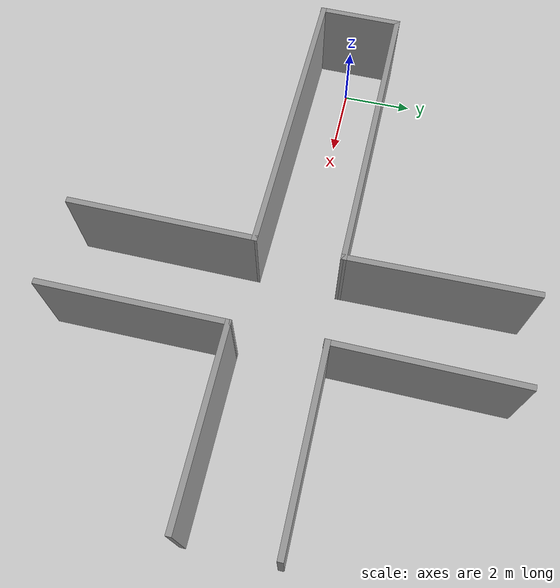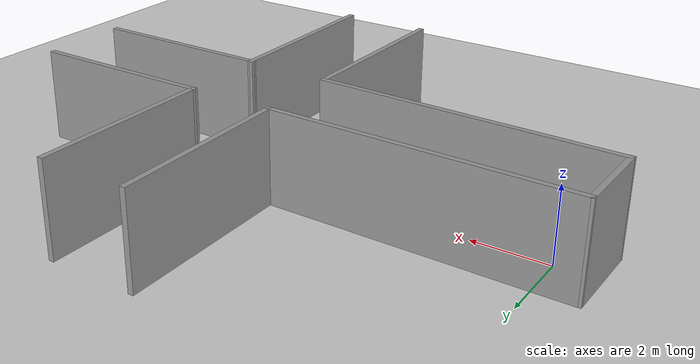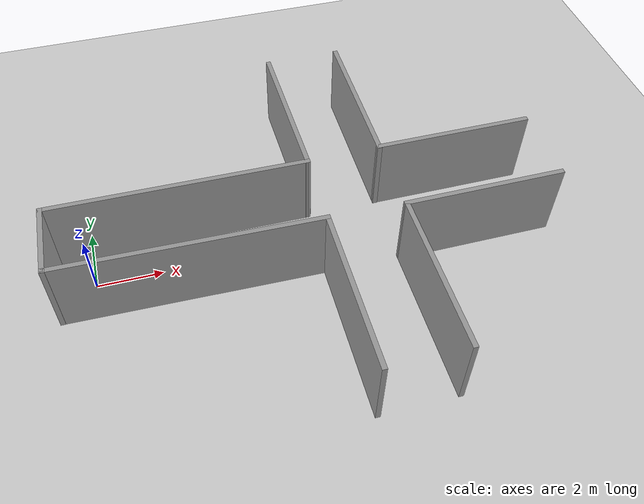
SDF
<sdf version="1.6">
 <world name="default">
  <light name="sun" type="directional">
   <pose>0 0 10 0 -0 0</pose>
   <diffuse>0.8 0.8 0.8 1</diffuse>
   <specular>0.2 0.2 0.2 1</specular>
   <attenuation>
    <range>1000</range>
    <constant>0.9</constant>
    <linear>0.01</linear>
    <quadratic>0.001</quadratic>
   </attenuation>
   <direction>-0.5 0.1 -0.9</direction>
  </light>
  <model name="ground_plane">
   <static>1</static>
   <link name="link">
    <collision name="collision">
     <geometry><plane><normal>0 0 1</normal><size>100 100</size></plane></geometry>
     <surface>
      <contact><collide_bitmask>65535</collide_bitmask></contact>
      <friction><ode><mu>100</mu><mu2>50</mu2></ode></friction>
     </surface>
    </collision>
    <visual name="visual">
     <cast_shadows>0</cast_shadows>
     <geometry><plane><normal>0 0 1</normal><size>100 100</size></plane></geometry>
     <material>
      <script><uri>file://media/materials/scripts/gazebo.material</uri><name>Gazebo/Grey</name></script>
     </material>
    </visual>
   </link>
  </model>
  <gravity>0 0 -9.8</gravity>
  <magnetic_field>6e-06 2.3e-05 -4.2e-05</magnetic_field>
  <atmosphere type="adiabatic"/>
  <physics name="default_physics" default="0" type="ode">
   <max_step_size>0.001</max_step_size>
   <real_time_factor>1</real_time_factor>
   <real_time_update_rate>1000</real_time_update_rate>
  </physics>
  <scene><ambient>0.4 0.4 0.4 1</ambient><background>0.7 0.7 0.7 1</background><shadows>1</shadows></scene>
  <audio><device>default</device></audio>
  <spherical_coordinates>
   <surface_model>EARTH_WGS84</surface_model>
   <latitude_deg>0</latitude_deg>
   <longitude_deg>0</longitude_deg>
   <elevation>0</elevation>
   <heading_deg>0</heading_deg>
  </spherical_coordinates>
  <model name="cross_roads">
   <pose>6.44941 -0.085248 0 0 0 -1.56933</pose>
   <link name="Wall_10">
    <collision name="Wall_10_Collision">
     <geometry><box><size>2.35535 0.15 2.5</size></box></geometry>
     <pose>0 0 1.25 0 -0 0</pose>
    </collision>
    <visual name="Wall_10_Visual">
     <pose>0 0 1.25 0 -0 0</pose>
     <geometry><box><size>2.35535 0.15 2.5</size></box></geometry>
     <material>
      <script><uri>file://media/materials/scripts/gazebo.material</uri><name>Gazebo/Grey</name></script>
      <ambient>1 1 1 1</ambient>
     </material>
     <meta><layer>0</layer></meta>
    </visual>
    <pose>-0.148023 -7.50062 0 0 -0 -0.011415</pose>
   </link>
   <link name="Wall_11">
    <collision name="Wall_11_Collision">
     <geometry><box><size>8 0.15 2.5</size></box></geometry>
     <pose>0 0 1.25 0 -0 0</pose>
    </collision>
    <visual name="Wall_11_Visual">
     <pose>0 0 1.25 0 -0 0</pose>
     <geometry><box><size>8 0.15 2.5</size></box></geometry>
     <material>
      <script><uri>file://media/materials/scripts/gazebo.material</uri><name>Gazebo/Grey</name></script>
      <ambient>1 1 1 1</ambient>
     </material>
     <meta><layer>0</layer></meta>
    </visual>
    <pose>1.02788 -3.58892 0 0 -0 1.55045</pose>
   </link>
   <link name="Wall_12">
    <collision name="Wall_12_Collision">
     <geometry><box><size>5.0649 0.15 2.5</size></box></geometry>
     <pose>0 0 1.25 0 -0 0</pose>
    </collision>
    <visual name="Wall_12_Visual">
     <pose>0 0 1.25 0 -0 0</pose>
     <geometry><box><size>5.0649 0.15 2.5</size></box></geometry>
     <material>
      <script><uri>file://media/materials/scripts/gazebo.material</uri><name>Gazebo/Grey</name></script>
      <ambient>1 1 1 1</ambient>
     </material>
     <meta><layer>0</layer></meta>
    </visual>
    <pose>3.57174 0.324978 0 0 -0 -0.004228</pose>
   </link>
   <link name="Wall_14">
    <collision name="Wall_14_Collision">
     <geometry><box><size>5 0.15 2.5</size></box></geometry>
     <pose>0 0 1.25 0 -0 0</pose>
    </collision>
    <visual name="Wall_14_Visual">
     <pose>0 0 1.25 0 -0 0</pose>
     <geometry><box><size>5 0.15 2.5</size></box></geometry>
     <material>
      <script><uri>file://media/materials/scripts/gazebo.material</uri><name>Gazebo/Grey</name></script>
      <ambient>1 1 1 1</ambient>
     </material>
     <meta><layer>0</layer></meta>
    </visual>
    <pose>3.60531 2.66745 0 0 -0 -3.14041</pose>
   </link>
   <link name="Wall_15">
    <collision name="Wall_15_Collision">
     <geometry><box><size>5 0.15 2.5</size></box></geometry>
     <pose>0 0 1.25 0 -0 0</pose>
    </collision>
    <visual name="Wall_15_Visual">
     <pose>0 0 1.25 0 -0 0</pose>
     <geometry><box><size>5 0.15 2.5</size></box></geometry>
     <material>
      <script><uri>file://media/materials/scripts/gazebo.material</uri><name>Gazebo/Grey</name></script>
      <ambient>1 1 1 1</ambient>
     </material>
     <meta><layer>0</layer></meta>
    </visual>
    <pose>1.17934 5.08959 0 0 -0 1.57119</pose>
   </link>
   <link name="Wall_17">
    <collision name="Wall_17_Collision">
     <geometry><box><size>5 0.15 2.5</size></box></geometry>
     <pose>0 0 1.25 0 -0 0</pose>
    </collision>
    <visual name="Wall_17_Visual">
     <pose>0 0 1.25 0 -0 0</pose>
     <geometry><box><size>5 0.15 2.5</size></box></geometry>
     <material>
      <script><uri>file://media/materials/scripts/gazebo.material</uri><name>Gazebo/Grey</name></script>
      <ambient>1 1 1 1</ambient>
     </material>
     <meta><layer>0</layer></meta>
    </visual>
    <pose>-1.22373 5.06011 0 0 -0 -1.5708</pose>
   </link>
   <link name="Wall_21">
    <collision name="Wall_21_Collision">
     <geometry><box><size>4.96042 0.15 2.5</size></box></geometry>
     <pose>0 0 1.25 0 -0 0</pose>
    </collision>
    <visual name="Wall_21_Visual">
     <pose>0 0 1.25 0 -0 0</pose>
     <geometry><box><size>4.96042 0.15 2.5</size></box></geometry>
     <material>
      <script><uri>file://media/materials/scripts/gazebo.material</uri><name>Gazebo/Grey</name></script>
      <ambient>1 1 1 1</ambient>
     </material>
     <meta><layer>0</layer></meta>
    </visual>
    <pose>-3.61567 2.64985 0 0 -0 3.13546</pose>
   </link>
   <link name="Wall_23">
    <collision name="Wall_23_Collision">
     <geometry><box><size>5 0.15 2.5</size></box></geometry>
     <pose>0 0 1.25 0 -0 0</pose>
    </collision>
    <visual name="Wall_23_Visual">
     <pose>0 0 1.25 0 -0 0</pose>
     <geometry><box><size>5 0.15 2.5</size></box></geometry>
     <material>
      <script><uri>file://media/materials/scripts/gazebo.material</uri><name>Gazebo/Grey</name></script>
      <ambient>1 1 1 1</ambient>
     </material>
     <meta><layer>0</layer></meta>
    </visual>
    <pose>-3.60463 0.331319 0 0 -0 0.01305</pose>
   </link>
   <link name="Wall_5">
    <collision name="Wall_5_Collision">
     <geometry><box><size>8.00132 0.15 2.5</size></box></geometry>
     <pose>0 0 1.25 0 -0 0</pose>
    </collision>
    <visual name="Wall_5_Visual">
     <pose>0 0 1.25 0 -0 0</pose>
     <geometry><box><size>8.00132 0.15 2.5</size></box></geometry>
     <material>
      <script><uri>file://media/materials/scripts/gazebo.material</uri><name>Gazebo/Grey</name></script>
      <ambient>1 1 1 1</ambient>
     </material>
     <meta><layer>0</layer></meta>
    </visual>
    <pose>-1.21523 -3.56253 0 0 -0 1.56178</pose>
   </link>
   <link name="Wall_6">
    <collision name="Wall_6_Collision">
     <geometry><box><size>0.15 0.15 2.5</size></box></geometry>
     <pose>0 0 1.25 0 -0 0</pose>
    </collision>
    <visual name="Wall_6_Visual">
     <pose>0 0 1.25 0 -0 0</pose>
     <geometry><box><size>0.15 0.15 2.5</size></box></geometry>
     <material>
      <script><uri>file://media/materials/scripts/gazebo.material</uri><name>Gazebo/Grey</name></script>
      <ambient>1 1 1 1</ambient>
     </material>
     <meta><layer>0</layer></meta>
    </visual>
    <pose>-1.17983 0.362965 0 0 -0 0</pose>
   </link>
   <static>1</static>
  </model>
 </world>
</sdf>
